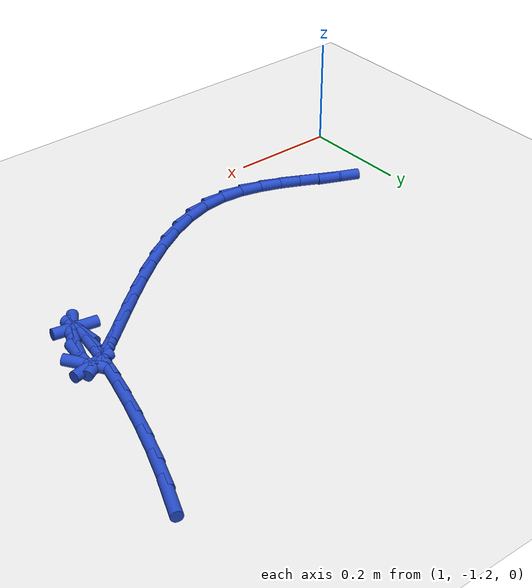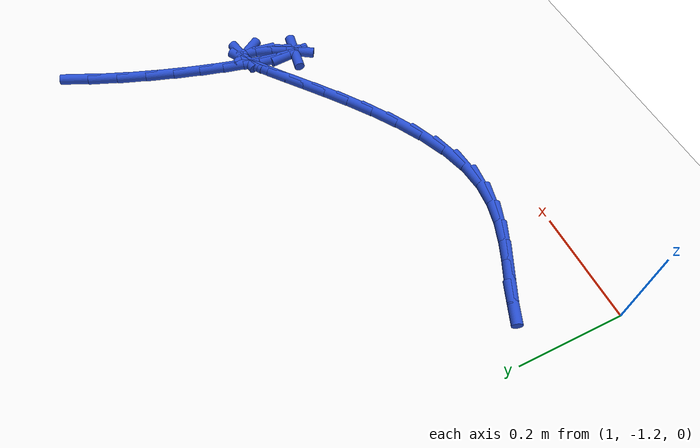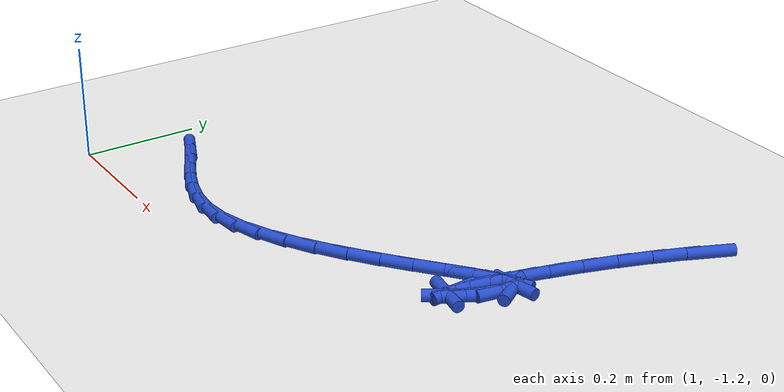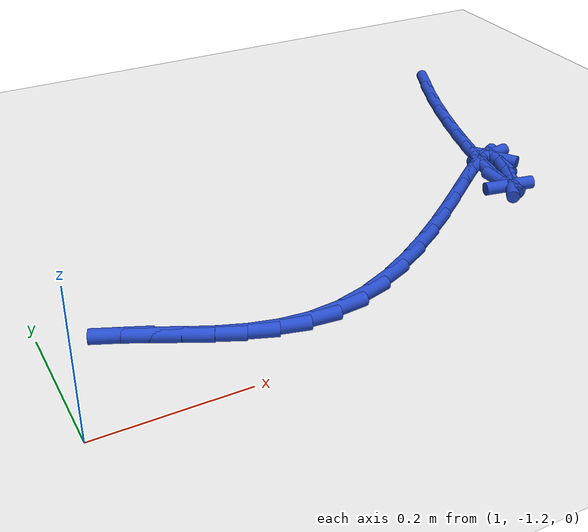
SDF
<sdf version="1.6">
 <world name="default">
  <model name="ground_plane">
   <static>1</static>
   <link name="link">
    <collision name="collision">
     <geometry><plane><normal>0 0 1</normal><size>100 100</size></plane></geometry>
     <surface><friction><ode><mu>100</mu><mu2>50</mu2></ode></friction></surface>
    </collision>
    <visual name="visual">
     <cast_shadows>0</cast_shadows>
     <geometry><plane><normal>0 0 1</normal><size>100 100</size></plane></geometry>
     <material>
      <script><uri>file://media/materials/scripts/gazebo.material</uri><name>Gazebo/WhiteGlow</name></script>
     </material>
    </visual>
   </link>
  </model>
  <model name="line">
   <link name="link_123">
    <pose>1.8678578900531595 -0.5447508253036482 0.01 0 1.57 1.1602156687926788</pose>
    <collision name="collision">
     <geometry><cylinder><radius>0.01</radius><length>0.08</length></cylinder></geometry>
    </collision>
    <visual name="visual">
     <material>
      <script><name>Gazebo/Blue</name><uri>file://media/materials/scripts/gazebo.material</uri></script>
     </material>
     <geometry><cylinder><radius>0.01</radius><length>0.08</length></cylinder></geometry>
    </visual>
   </link>
   <link name="link_124">
    <pose>1.8457599524028698 -0.595513138195624 0.01 0 1.57 1.2021552810926013</pose>
    <collision name="collision">
     <geometry><cylinder><radius>0.01</radius><length>0.08</length></cylinder></geometry>
    </collision>
    <visual name="visual">
     <material>
      <script><name>Gazebo/Blue</name><uri>file://media/materials/scripts/gazebo.material</uri></script>
     </material>
     <geometry><cylinder><radius>0.01</radius><length>0.08</length></cylinder></geometry>
    </visual>
   </link>
   <link name="link_125">
    <pose>1.8253519466282635 -0.6483424793980745 0.01 0 1.57 1.2368597007518378</pose>
    <collision name="collision">
     <geometry><cylinder><radius>0.01</radius><length>0.08</length></cylinder></geometry>
    </collision>
    <visual name="visual">
     <material>
      <script><name>Gazebo/Blue</name><uri>file://media/materials/scripts/gazebo.material</uri></script>
     </material>
     <geometry><cylinder><radius>0.01</radius><length>0.08</length></cylinder></geometry>
    </visual>
   </link>
   <link name="link_126">
    <pose>1.8068510474951773 -0.7016700548785219 0.01 0 1.57 1.2671044773944304</pose>
    <collision name="collision">
     <geometry><cylinder><radius>0.01</radius><length>0.08</length></cylinder></geometry>
    </collision>
    <visual name="visual">
     <material>
      <script><name>Gazebo/Blue</name><uri>file://media/materials/scripts/gazebo.material</uri></script>
     </material>
     <geometry><cylinder><radius>0.01</radius><length>0.08</length></cylinder></geometry>
    </visual>
   </link>
   <link name="link_127">
    <pose>1.7904744297694446 -0.7539270706044909 0.01 0 1.57 1.2951317414320291</pose>
    <collision name="collision">
     <geometry><cylinder><radius>0.01</radius><length>0.08</length></cylinder></geometry>
    </collision>
    <visual name="visual">
     <material>
      <script><name>Gazebo/Blue</name><uri>file://media/materials/scripts/gazebo.material</uri></script>
     </material>
     <geometry><cylinder><radius>0.01</radius><length>0.08</length></cylinder></geometry>
    </visual>
   </link>
   <link name="link_128">
    <pose>1.776439268216901 -0.8035447325435064 0.01 0 1.57 1.323246095940868</pose>
    <collision name="collision">
     <geometry><cylinder><radius>0.01</radius><length>0.08</length></cylinder></geometry>
    </collision>
    <visual name="visual">
     <material>
      <script><name>Gazebo/Blue</name><uri>file://media/materials/scripts/gazebo.material</uri></script>
     </material>
     <geometry><cylinder><radius>0.01</radius><length>0.08</length></cylinder></geometry>
    </visual>
   </link>
   <link name="link_129">
    <pose>1.764962737603381 -0.8489542466630923 0.01 0 1.57 1.3546898831826746</pose>
    <collision name="collision">
     <geometry><cylinder><radius>0.01</radius><length>0.08</length></cylinder></geometry>
    </collision>
    <visual name="visual">
     <material>
      <script><name>Gazebo/Blue</name><uri>file://media/materials/scripts/gazebo.material</uri></script>
     </material>
     <geometry><cylinder><radius>0.01</radius><length>0.08</length></cylinder></geometry>
    </visual>
   </link>
   <link name="link_130">
    <pose>1.75626201269472 -0.8885868189307731 0.01 0 1.57 1.3958217488889644</pose>
    <collision name="collision">
     <geometry><cylinder><radius>0.01</radius><length>0.08</length></cylinder></geometry>
    </collision>
    <visual name="visual">
     <material>
      <script><name>Gazebo/Blue</name><uri>file://media/materials/scripts/gazebo.material</uri></script>
     </material>
     <geometry><cylinder><radius>0.01</radius><length>0.08</length></cylinder></geometry>
    </visual>
   </link>
   <link name="link_131">
    <pose>1.750554268256752 -0.9208736553140725 0.01 0 1.57 1.464339271641797</pose>
    <collision name="collision">
     <geometry><cylinder><radius>0.01</radius><length>0.08</length></cylinder></geometry>
    </collision>
    <visual name="visual">
     <material>
      <script><name>Gazebo/Blue</name><uri>file://media/materials/scripts/gazebo.material</uri></script>
     </material>
     <geometry><cylinder><radius>0.01</radius><length>0.08</length></cylinder></geometry>
    </visual>
   </link>
   <link name="link_132">
    <pose>1.7480566790553131 -0.9442459617805159 0.01 0 1.57 -1.4987865142412173</pose>
    <collision name="collision">
     <geometry><cylinder><radius>0.01</radius><length>0.08</length></cylinder></geometry>
    </collision>
    <visual name="visual">
     <material>
      <script><name>Gazebo/Blue</name><uri>file://media/materials/scripts/gazebo.material</uri></script>
     </material>
     <geometry><cylinder><radius>0.01</radius><length>0.08</length></cylinder></geometry>
    </visual>
   </link>
   <link name="link_133">
    <pose>1.7489864198562375 -0.9571349442976256 0.01 0 1.57 -0.18095021560822988</pose>
    <collision name="collision">
     <geometry><cylinder><radius>0.01</radius><length>0.08</length></cylinder></geometry>
    </collision>
    <visual name="visual">
     <material>
      <script><name>Gazebo/Blue</name><uri>file://media/materials/scripts/gazebo.material</uri></script>
     </material>
     <geometry><cylinder><radius>0.01</radius><length>0.08</length></cylinder></geometry>
    </visual>
   </link>
   <link name="link_134">
    <pose>1.7535606654253604 -0.9579718088329272 0.01 0 1.57 0.9875075751058613</pose>
    <collision name="collision">
     <geometry><cylinder><radius>0.01</radius><length>0.08</length></cylinder></geometry>
    </collision>
    <visual name="visual">
     <material>
      <script><name>Gazebo/Blue</name><uri>file://media/materials/scripts/gazebo.material</uri></script>
     </material>
     <geometry><cylinder><radius>0.01</radius><length>0.08</length></cylinder></geometry>
    </visual>
   </link>
   <link name="link_135">
    <pose>1.7619965905285169 -0.9451877613539448 0.01 0 1.57 1.1498805031791486</pose>
    <collision name="collision">
     <geometry><cylinder><radius>0.01</radius><length>0.08</length></cylinder></geometry>
    </collision>
    <visual name="visual">
     <material>
      <script><name>Gazebo/Blue</name><uri>file://media/materials/scripts/gazebo.material</uri></script>
     </material>
     <geometry><cylinder><radius>0.01</radius><length>0.08</length></cylinder></geometry>
    </visual>
   </link>
   <link name="link_136">
    <pose>1.77431776916899 -0.9176649466305802 0.01 0 1.57 1.2307943236190837</pose>
    <collision name="collision">
     <geometry><cylinder><radius>0.01</radius><length>0.08</length></cylinder></geometry>
    </collision>
    <visual name="visual">
     <material>
      <script><name>Gazebo/Blue</name><uri>file://media/materials/scripts/gazebo.material</uri></script>
     </material>
     <geometry><cylinder><radius>0.01</radius><length>0.08</length></cylinder></geometry>
    </visual>
   </link>
   <link name="link_137">
    <pose>1.7855168537848602 -0.8860057842513503 0.01 0 1.57 1.4210872389736087</pose>
    <collision name="collision">
     <geometry><cylinder><radius>0.01</radius><length>0.08</length></cylinder></geometry>
    </collision>
    <visual name="visual">
     <material>
      <script><name>Gazebo/Blue</name><uri>file://media/materials/scripts/gazebo.material</uri></script>
     </material>
     <geometry><cylinder><radius>0.01</radius><length>0.08</length></cylinder></geometry>
    </visual>
   </link>
   <link name="link_138">
    <pose>1.7885420647548185 -0.8659497141056136 0.01 0 1.57 -0.9864437228030141</pose>
    <collision name="collision">
     <geometry><cylinder><radius>0.01</radius><length>0.08</length></cylinder></geometry>
    </collision>
    <visual name="visual">
     <material>
      <script><name>Gazebo/Blue</name><uri>file://media/materials/scripts/gazebo.material</uri></script>
     </material>
     <geometry><cylinder><radius>0.01</radius><length>0.08</length></cylinder></geometry>
    </visual>
   </link>
   <link name="link_139">
    <pose>1.7832491694999923 -0.8579472383281349 0.01 0 1.57 0.18922689112396143</pose>
    <collision name="collision">
     <geometry><cylinder><radius>0.01</radius><length>0.08</length></cylinder></geometry>
    </collision>
    <visual name="visual">
     <material>
      <script><name>Gazebo/Blue</name><uri>file://media/materials/scripts/gazebo.material</uri></script>
     </material>
     <geometry><cylinder><radius>0.01</radius><length>0.08</length></cylinder></geometry>
    </visual>
   </link>
   <link name="link_140">
    <pose>1.770415517145995 -0.8604051170038428 0.01 0 1.57 0.5240053160587765</pose>
    <collision name="collision">
     <geometry><cylinder><radius>0.01</radius><length>0.08</length></cylinder></geometry>
    </collision>
    <visual name="visual">
     <material>
      <script><name>Gazebo/Blue</name><uri>file://media/materials/scripts/gazebo.material</uri></script>
     </material>
     <geometry><cylinder><radius>0.01</radius><length>0.08</length></cylinder></geometry>
    </visual>
   </link>
   <link name="link_141">
    <pose>1.7508184568184428 -0.8717301102176691 0.01 0 1.57 0.628616355564191</pose>
    <collision name="collision">
     <geometry><cylinder><radius>0.01</radius><length>0.08</length></cylinder></geometry>
    </collision>
    <visual name="visual">
     <material>
      <script><name>Gazebo/Blue</name><uri>file://media/materials/scripts/gazebo.material</uri></script>
     </material>
     <geometry><cylinder><radius>0.01</radius><length>0.08</length></cylinder></geometry>
    </visual>
   </link>
   <link name="link_142">
    <pose>1.725235337642949 -0.8903289780545438 0.01 0 1.57 0.6676922182619754</pose>
    <collision name="collision">
     <geometry><cylinder><radius>0.01</radius><length>0.08</length></cylinder></geometry>
    </collision>
    <visual name="visual">
     <material>
      <script><name>Gazebo/Blue</name><uri>file://media/materials/scripts/gazebo.material</uri></script>
     </material>
     <geometry><cylinder><radius>0.01</radius><length>0.08</length></cylinder></geometry>
    </visual>
   </link>
   <link name="link_143">
    <pose>1.6944435087451293 -0.9146084805993977 0.01 0 1.57 0.6779929412883795</pose>
    <collision name="collision">
     <geometry><cylinder><radius>0.01</radius><length>0.08</length></cylinder></geometry>
    </collision>
    <visual name="visual">
     <material>
      <script><name>Gazebo/Blue</name><uri>file://media/materials/scripts/gazebo.material</uri></script>
     </material>
     <geometry><cylinder><radius>0.01</radius><length>0.08</length></cylinder></geometry>
    </visual>
   </link>
   <link name="link_144">
    <pose>1.6592203192505977 -0.9429753779371615 0.01 0 1.57 0.67095421276868</pose>
    <collision name="collision">
     <geometry><cylinder><radius>0.01</radius><length>0.08</length></cylinder></geometry>
    </collision>
    <visual name="visual">
     <material>
      <script><name>Gazebo/Blue</name><uri>file://media/materials/scripts/gazebo.material</uri></script>
     </material>
     <geometry><cylinder><radius>0.01</radius><length>0.08</length></cylinder></geometry>
    </visual>
   </link>
   <link name="link_145">
    <pose>1.6203431182849677 -0.9738364301527659 0.01 0 1.57 0.6503110285082857</pose>
    <collision name="collision">
     <geometry><cylinder><radius>0.01</radius><length>0.08</length></cylinder></geometry>
    </collision>
    <visual name="visual">
     <material>
      <script><name>Gazebo/Blue</name><uri>file://media/materials/scripts/gazebo.material</uri></script>
     </material>
     <geometry><cylinder><radius>0.01</radius><length>0.08</length></cylinder></geometry>
    </visual>
   </link>
   <link name="link_146">
    <pose>1.5785892549738567 -1.0055983973311409 0.01 0 1.57 0.6164028503578592</pose>
    <collision name="collision">
     <geometry><cylinder><radius>0.01</radius><length>0.08</length></cylinder></geometry>
    </collision>
    <visual name="visual">
     <material>
      <script><name>Gazebo/Blue</name><uri>file://media/materials/scripts/gazebo.material</uri></script>
     </material>
     <geometry><cylinder><radius>0.01</radius><length>0.08</length></cylinder></geometry>
    </visual>
   </link>
   <link name="link_147">
    <pose>1.5347360784428774 -1.036668039557217 0.01 0 1.57 0.5673003199129492</pose>
    <collision name="collision">
     <geometry><cylinder><radius>0.01</radius><length>0.08</length></cylinder></geometry>
    </collision>
    <visual name="visual">
     <material>
      <script><name>Gazebo/Blue</name><uri>file://media/materials/scripts/gazebo.material</uri></script>
     </material>
     <geometry><cylinder><radius>0.01</radius><length>0.08</length></cylinder></geometry>
    </visual>
   </link>
   <link name="link_148">
    <pose>1.4895609378176453 -1.0654521169159252 0.01 0 1.57 0.49879404938840044</pose>
    <collision name="collision">
     <geometry><cylinder><radius>0.01</radius><length>0.08</length></cylinder></geometry>
    </collision>
    <visual name="visual">
     <material>
      <script><name>Gazebo/Blue</name><uri>file://media/materials/scripts/gazebo.material</uri></script>
     </material>
     <geometry><cylinder><radius>0.01</radius><length>0.08</length></cylinder></geometry>
    </visual>
   </link>
   <link name="link_149">
    <pose>1.443841182223774 -1.090357389492196 0.01 0 1.57 0.4037543853636189</pose>
    <collision name="collision">
     <geometry><cylinder><radius>0.01</radius><length>0.08</length></cylinder></geometry>
    </collision>
    <visual name="visual">
     <material>
      <script><name>Gazebo/Blue</name><uri>file://media/materials/scripts/gazebo.material</uri></script>
     </material>
     <geometry><cylinder><radius>0.01</radius><length>0.08</length></cylinder></geometry>
    </visual>
   </link>
   <link name="link_150">
    <pose>1.3983541607868792 -1.1097906173709602 0.01 0 1.57 0.2712231504496789</pose>
    <collision name="collision">
     <geometry><cylinder><radius>0.01</radius><length>0.08</length></cylinder></geometry>
    </collision>
    <visual name="visual">
     <material>
      <script><name>Gazebo/Blue</name><uri>file://media/materials/scripts/gazebo.material</uri></script>
     </material>
     <geometry><cylinder><radius>0.01</radius><length>0.08</length></cylinder></geometry>
    </visual>
   </link>
   <link name="link_151">
    <pose>1.353877222632574 -1.122158560637148 0.01 0 1.57 0.09172547782056037</pose>
    <collision name="collision">
     <geometry><cylinder><radius>0.01</radius><length>0.08</length></cylinder></geometry>
    </collision>
    <visual name="visual">
     <material>
      <script><name>Gazebo/Blue</name><uri>file://media/materials/scripts/gazebo.material</uri></script>
     </material>
     <geometry><cylinder><radius>0.01</radius><length>0.08</length></cylinder></geometry>
    </visual>
   </link>
   <link name="link_152">
    <pose>1.3111309884109874 -1.1260905128292025 0.01 0 1.57 -0.09381881011668006</pose>
    <collision name="collision">
     <geometry><cylinder><radius>0.01</radius><length>0.08</length></cylinder></geometry>
    </collision>
    <visual name="visual">
     <material>
      <script><name>Gazebo/Blue</name><uri>file://media/materials/scripts/gazebo.material</uri></script>
     </material>
     <geometry><cylinder><radius>0.01</radius><length>0.08</length></cylinder></geometry>
    </visual>
   </link>
   <link name="link_153">
    <pose>1.2703174684594927 -1.1222501627858466 0.01 0 1.57 -0.24786242539895179</pose>
    <collision name="collision">
     <geometry><cylinder><radius>0.01</radius><length>0.08</length></cylinder></geometry>
    </collision>
    <visual name="visual">
     <material>
      <script><name>Gazebo/Blue</name><uri>file://media/materials/scripts/gazebo.material</uri></script>
     </material>
     <geometry><cylinder><radius>0.01</radius><length>0.08</length></cylinder></geometry>
    </visual>
   </link>
   <link name="link_154">
    <pose>1.2313607255152157 -1.1123915272428044 0.01 0 1.57 -0.36278702494224935</pose>
    <collision name="collision">
     <geometry><cylinder><radius>0.01</radius><length>0.08</length></cylinder></geometry>
    </collision>
    <visual name="visual">
     <material>
      <script><name>Gazebo/Blue</name><uri>file://media/materials/scripts/gazebo.material</uri></script>
     </material>
     <geometry><cylinder><radius>0.01</radius><length>0.08</length></cylinder></geometry>
    </visual>
   </link>
   <link name="link_155">
    <pose>1.1941821786013538 -1.0982789936497304 0.01 0 1.57 -0.43767302875868397</pose>
    <collision name="collision">
     <geometry><cylinder><radius>0.01</radius><length>0.08</length></cylinder></geometry>
    </collision>
    <visual name="visual">
     <material>
      <script><name>Gazebo/Blue</name><uri>file://media/materials/scripts/gazebo.material</uri></script>
     </material>
     <geometry><cylinder><radius>0.01</radius><length>0.08</length></cylinder></geometry>
    </visual>
   </link>
   <link name="link_156">
    <pose>1.1587032467411027 -1.0816769494562808 0.01 0 1.57 -0.47301244760638506</pose>
    <collision name="collision">
     <geometry><cylinder><radius>0.01</radius><length>0.08</length></cylinder></geometry>
    </collision>
    <visual name="visual">
     <material>
      <script><name>Gazebo/Blue</name><uri>file://media/materials/scripts/gazebo.material</uri></script>
     </material>
     <geometry><cylinder><radius>0.01</radius><length>0.08</length></cylinder></geometry>
    </visual>
   </link>
   <link name="link_157">
    <pose>1.1248453489576582 -1.0643497821121097 0.01 0 1.57 -0.4668651620659645</pose>
    <collision name="collision">
     <geometry><cylinder><radius>0.01</radius><length>0.08</length></cylinder></geometry>
    </collision>
    <visual name="visual">
     <material>
      <script><name>Gazebo/Blue</name><uri>file://media/materials/scripts/gazebo.material</uri></script>
     </material>
     <geometry><cylinder><radius>0.01</radius><length>0.08</length></cylinder></geometry>
    </visual>
   </link>
   <link name="link_158">
    <pose>1.0925299042742178 -1.0480618790668736 0.01 0 1.57 -0.41204822771681443</pose>
    <collision name="collision">
     <geometry><cylinder><radius>0.01</radius><length>0.08</length></cylinder></geometry>
    </collision>
    <visual name="visual">
     <material>
      <script><name>Gazebo/Blue</name><uri>file://media/materials/scripts/gazebo.material</uri></script>
     </material>
     <geometry><cylinder><radius>0.01</radius><length>0.08</length></cylinder></geometry>
    </visual>
   </link>
  </model>
 </world>
</sdf>
